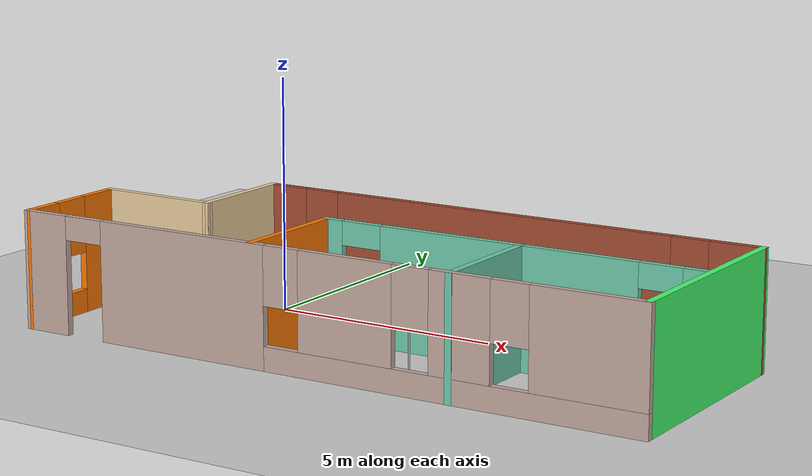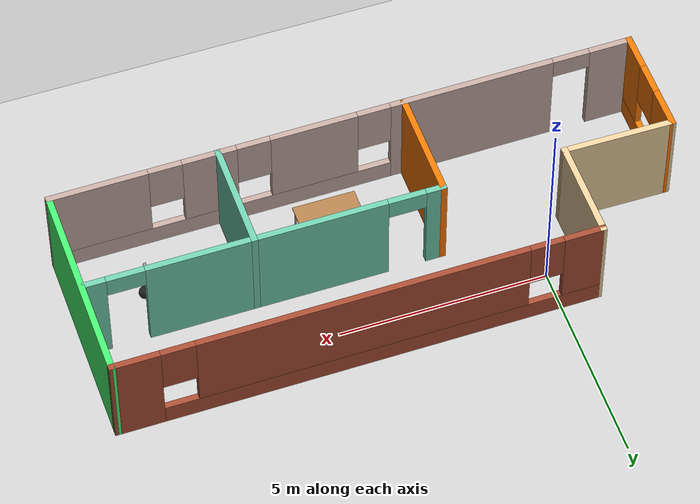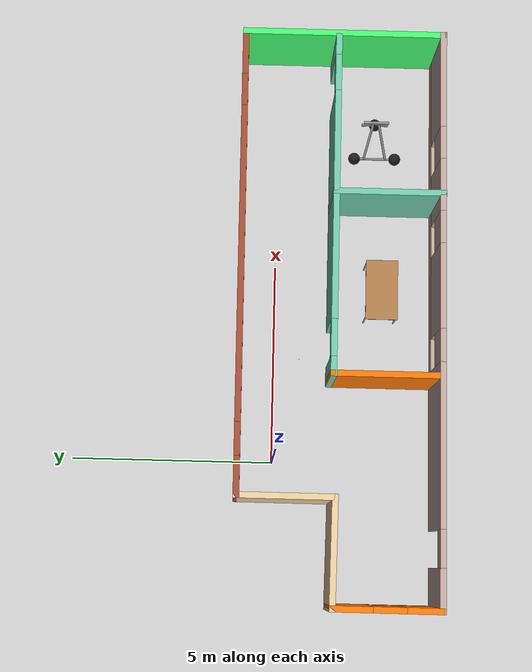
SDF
<sdf version="1.6">
 <world name="default">
  <light name="sun" type="directional">
   <pose>0 0 10 0 -0 0</pose>
   <diffuse>0.8 0.8 0.8 1</diffuse>
   <specular>0.2 0.2 0.2 1</specular>
   <attenuation>
    <range>1000</range>
    <constant>0.9</constant>
    <linear>0.01</linear>
    <quadratic>0.001</quadratic>
   </attenuation>
   <direction>-0.5 0.1 -0.9</direction>
  </light>
  <model name="ground_plane">
   <static>1</static>
   <link name="link">
    <collision name="collision">
     <geometry><plane><normal>0 0 1</normal><size>100 100</size></plane></geometry>
     <surface>
      <contact><collide_bitmask>65535</collide_bitmask></contact>
      <friction><ode><mu>100</mu><mu2>50</mu2></ode></friction>
     </surface>
    </collision>
    <visual name="visual">
     <cast_shadows>0</cast_shadows>
     <geometry><plane><normal>0 0 1</normal><size>100 100</size></plane></geometry>
     <material>
      <script><uri>file://media/materials/scripts/gazebo.material</uri><name>Gazebo/Grey</name></script>
     </material>
    </visual>
   </link>
  </model>
  <gravity>0 0 -9.8</gravity>
  <magnetic_field>6e-06 2.3e-05 -4.2e-05</magnetic_field>
  <atmosphere type="adiabatic"/>
  <physics name="default_physics" default="0" type="ode">
   <max_step_size>0.001</max_step_size>
   <real_time_factor>1</real_time_factor>
   <real_time_update_rate>1000</real_time_update_rate>
  </physics>
  <scene><ambient>0.4 0.4 0.4 1</ambient><background>0.7 0.7 0.7 1</background><shadows>1</shadows></scene>
  <spherical_coordinates>
   <surface_model>EARTH_WGS84</surface_model>
   <latitude_deg>0</latitude_deg>
   <longitude_deg>0</longitude_deg>
   <elevation>0</elevation>
   <heading_deg>0</heading_deg>
  </spherical_coordinates>
  <model name="New">
   <pose>3.48669 -1.57847 0 0 -0 0</pose>
   <link name="Wall_0">
    <pose>-6.99669 -1.17687 0 0 0 -1.5708</pose>
    <visual name="Wall_0_Visual_0">
     <pose>-0.859523 0 1.25 0 -0 0</pose>
     <geometry><box><size>1.03095 0.15 2.5</size></box></geometry>
     <material>
      <script><uri>file://media/materials/scripts/gazebo.material</uri><name>Gazebo/Grey</name></script>
      <ambient>0.996078 0.47451 0.0196078 1</ambient>
     </material>
     <meta><layer>0</layer></meta>
    </visual>
    <collision name="Wall_0_Collision_0">
     <geometry><box><size>1.03095 0.15 2.5</size></box></geometry>
     <pose>-0.859523 0 1.25 0 -0 0</pose>
    </collision>
    <visual name="Wall_0_Visual_1">
     <pose>0.515477 0 0.25 0 -0 0</pose>
     <geometry><box><size>1.71905 0.15 0.5</size></box></geometry>
     <material>
      <script><uri>file://media/materials/scripts/gazebo.material</uri><name>Gazebo/Grey</name></script>
      <ambient>0.996078 0.47451 0.0196078 1</ambient>
     </material>
     <meta><layer>0</layer></meta>
    </visual>
    <collision name="Wall_0_Collision_1">
     <geometry><box><size>1.71905 0.15 0.5</size></box></geometry>
     <pose>0.515477 0 0.25 0 -0 0</pose>
    </collision>
    <visual name="Wall_0_Visual_2">
     <pose>0.915477 0 1.5 0 -0 0</pose>
     <geometry><box><size>0.919047 0.15 2</size></box></geometry>
     <material>
      <script><uri>file://media/materials/scripts/gazebo.material</uri><name>Gazebo/Grey</name></script>
      <ambient>0.996078 0.47451 0.0196078 1</ambient>
     </material>
     <meta><layer>0</layer></meta>
    </visual>
    <collision name="Wall_0_Collision_2">
     <geometry><box><size>0.919047 0.15 2</size></box></geometry>
     <pose>0.915477 0 1.5 0 -0 0</pose>
    </collision>
    <visual name="Wall_0_Visual_3">
     <pose>0.055953 0 1.9 0 -0 0</pose>
     <geometry><box><size>0.8 0.15 1.2</size></box></geometry>
     <material>
      <script><uri>file://media/materials/scripts/gazebo.material</uri><name>Gazebo/Grey</name></script>
      <ambient>0.996078 0.47451 0.0196078 1</ambient>
     </material>
     <meta><layer>0</layer></meta>
    </visual>
    <collision name="Wall_0_Collision_3">
     <geometry><box><size>0.8 0.15 1.2</size></box></geometry>
     <pose>0.055953 0 1.9 0 -0 0</pose>
    </collision>
   </link>
   <link name="Wall_1">
    <pose>4e-06 -2.4337 0 0 -0 0.00617</pose>
    <visual name="Wall_1_Visual_0">
     <pose>-6.52931 0 1.25 0 -0 0</pose>
     <geometry><box><size>1.08587 0.15 2.5</size></box></geometry>
     <material>
      <script><uri>file://media/materials/scripts/gazebo.material</uri><name>Gazebo/Grey</name></script>
      <ambient>0.760784 0.662745 0.627451 1</ambient>
     </material>
     <meta><layer>0</layer></meta>
    </visual>
    <collision name="Wall_1_Collision_0">
     <geometry><box><size>1.08587 0.15 2.5</size></box></geometry>
     <pose>-6.52931 0 1.25 0 -0 0</pose>
    </collision>
    <visual name="Wall_1_Visual_1">
     <pose>-3.09631 0 1.25 0 -0 0</pose>
     <geometry><box><size>3.98014 0.15 2.5</size></box></geometry>
     <material>
      <script><uri>file://media/materials/scripts/gazebo.material</uri><name>Gazebo/Grey</name></script>
      <ambient>0.760784 0.662745 0.627451 1</ambient>
     </material>
     <meta><layer>0</layer></meta>
    </visual>
    <collision name="Wall_1_Collision_1">
     <geometry><box><size>3.98014 0.15 2.5</size></box></geometry>
     <pose>-3.09631 0 1.25 0 -0 0</pose>
    </collision>
    <visual name="Wall_1_Visual_2">
     <pose>2.983 0 0.25 0 -0 0</pose>
     <geometry><box><size>8.17848 0.15 0.5</size></box></geometry>
     <material>
      <script><uri>file://media/materials/scripts/gazebo.material</uri><name>Gazebo/Grey</name></script>
      <ambient>0.760784 0.662745 0.627451 1</ambient>
     </material>
     <meta><layer>0</layer></meta>
    </visual>
    <collision name="Wall_1_Collision_2">
     <geometry><box><size>8.17848 0.15 0.5</size></box></geometry>
     <pose>2.983 0 0.25 0 -0 0</pose>
    </collision>
    <visual name="Wall_1_Visual_3">
     <pose>0.739938 0 1.5 0 -0 0</pose>
     <geometry><box><size>2.09235 0.15 2</size></box></geometry>
     <material>
      <script><uri>file://media/materials/scripts/gazebo.material</uri><name>Gazebo/Grey</name></script>
      <ambient>0.760784 0.662745 0.627451 1</ambient>
     </material>
     <meta><layer>0</layer></meta>
    </visual>
    <collision name="Wall_1_Collision_3">
     <geometry><box><size>2.09235 0.15 2</size></box></geometry>
     <pose>0.739938 0 1.5 0 -0 0</pose>
    </collision>
    <visual name="Wall_1_Visual_4">
     <pose>3.23501 0 1.5 0 -0 0</pose>
     <geometry><box><size>1.29778 0.15 2</size></box></geometry>
     <material>
      <script><uri>file://media/materials/scripts/gazebo.material</uri><name>Gazebo/Grey</name></script>
      <ambient>0.760784 0.662745 0.627451 1</ambient>
     </material>
     <meta><layer>0</layer></meta>
    </visual>
    <collision name="Wall_1_Collision_4">
     <geometry><box><size>1.29778 0.15 2</size></box></geometry>
     <pose>3.23501 0 1.5 0 -0 0</pose>
    </collision>
    <visual name="Wall_1_Visual_5">
     <pose>5.87807 0 1.5 0 -0 0</pose>
     <geometry><box><size>2.38834 0.15 2</size></box></geometry>
     <material>
      <script><uri>file://media/materials/scripts/gazebo.material</uri><name>Gazebo/Grey</name></script>
      <ambient>0.760784 0.662745 0.627451 1</ambient>
     </material>
     <meta><layer>0</layer></meta>
    </visual>
    <collision name="Wall_1_Collision_5">
     <geometry><box><size>2.38834 0.15 2</size></box></geometry>
     <pose>5.87807 0 1.5 0 -0 0</pose>
    </collision>
    <visual name="Wall_1_Visual_6">
     <pose>-0.70624 0 1.9 0 -0 0</pose>
     <geometry><box><size>0.8 0.15 1.2</size></box></geometry>
     <material>
      <script><uri>file://media/materials/scripts/gazebo.material</uri><name>Gazebo/Grey</name></script>
      <ambient>0.760784 0.662745 0.627451 1</ambient>
     </material>
     <meta><layer>0</layer></meta>
    </visual>
    <collision name="Wall_1_Collision_6">
     <geometry><box><size>0.8 0.15 1.2</size></box></geometry>
     <pose>-0.70624 0 1.9 0 -0 0</pose>
    </collision>
    <visual name="Wall_1_Visual_7">
     <pose>2.18612 0 1.9 0 -0 0</pose>
     <geometry><box><size>0.8 0.15 1.2</size></box></geometry>
     <material>
      <script><uri>file://media/materials/scripts/gazebo.material</uri><name>Gazebo/Grey</name></script>
      <ambient>0.760784 0.662745 0.627451 1</ambient>
     </material>
     <meta><layer>0</layer></meta>
    </visual>
    <collision name="Wall_1_Collision_7">
     <geometry><box><size>0.8 0.15 1.2</size></box></geometry>
     <pose>2.18612 0 1.9 0 -0 0</pose>
    </collision>
    <visual name="Wall_1_Visual_8">
     <pose>4.2839 0 1.9 0 -0 0</pose>
     <geometry><box><size>0.8 0.15 1.2</size></box></geometry>
     <material>
      <script><uri>file://media/materials/scripts/gazebo.material</uri><name>Gazebo/Grey</name></script>
      <ambient>0.760784 0.662745 0.627451 1</ambient>
     </material>
     <meta><layer>0</layer></meta>
    </visual>
    <collision name="Wall_1_Collision_8">
     <geometry><box><size>0.8 0.15 1.2</size></box></geometry>
     <pose>4.2839 0 1.9 0 -0 0</pose>
    </collision>
    <visual name="Wall_1_Visual_9">
     <pose>-5.53637 0 2.25 0 -0 0</pose>
     <geometry><box><size>0.9 0.15 0.5</size></box></geometry>
     <material>
      <script><uri>file://media/materials/scripts/gazebo.material</uri><name>Gazebo/Grey</name></script>
      <ambient>0.760784 0.662745 0.627451 1</ambient>
     </material>
     <meta><layer>0</layer></meta>
    </visual>
    <collision name="Wall_1_Collision_9">
     <geometry><box><size>0.9 0.15 0.5</size></box></geometry>
     <pose>-5.53637 0 2.25 0 -0 0</pose>
    </collision>
   </link>
   <link name="Wall_11">
    <collision name="Wall_11_Collision">
     <geometry><box><size>2.75 0.15 2.5</size></box></geometry>
     <pose>0 0 1.25 0 -0 0</pose>
    </collision>
    <visual name="Wall_11_Visual">
     <pose>0 0 1.25 0 -0 0</pose>
     <geometry><box><size>2.75 0.15 2.5</size></box></geometry>
     <material>
      <script><uri>file://media/materials/scripts/gazebo.material</uri><name>Gazebo/Grey</name></script>
      <ambient>0.435294 0.796078 0.67451 1</ambient>
     </material>
     <meta><layer>0</layer></meta>
    </visual>
    <pose>3.01459 -1.12215 0 0 0 -1.5708</pose>
   </link>
   <link name="Wall_2">
    <collision name="Wall_2_Collision">
     <geometry><box><size>5 0.15 2.5</size></box></geometry>
     <pose>0 0 1.25 0 -0 0</pose>
    </collision>
    <visual name="Wall_2_Visual">
     <pose>0 0 1.25 0 -0 0</pose>
     <geometry><box><size>5 0.15 2.5</size></box></geometry>
     <material>
      <script><uri>file://media/materials/scripts/gazebo.material</uri><name>Gazebo/Grey</name></script>
      <ambient>0.270588 1 0.439216 1</ambient>
     </material>
     <meta><layer>0</layer></meta>
    </visual>
    <pose>6.9967 0.052103 0 0 -0 1.5708</pose>
   </link>
   <link name="Wall_3">
    <pose>1.3 2.45979 0 0 0 -3.13855</pose>
    <visual name="Wall_3_Visual_0">
     <pose>-5.18658 0 1.25 0 -0 0</pose>
     <geometry><box><size>1.17029 0.15 2.5</size></box></geometry>
     <material>
      <script><uri>file://media/materials/scripts/gazebo.material</uri><name>Gazebo/Bricks</name></script>
      <ambient>1 1 1 1</ambient>
     </material>
     <meta><layer>0</layer></meta>
    </visual>
    <collision name="Wall_3_Collision_0">
     <geometry><box><size>1.17029 0.15 2.5</size></box></geometry>
     <pose>-5.18658 0 1.25 0 -0 0</pose>
    </collision>
    <visual name="Wall_3_Visual_1">
     <pose>0.585144 0 0.25 0 -0 0</pose>
     <geometry><box><size>10.3732 0.15 0.5</size></box></geometry>
     <material>
      <script><uri>file://media/materials/scripts/gazebo.material</uri><name>Gazebo/Bricks</name></script>
      <ambient>1 1 1 1</ambient>
     </material>
     <meta><layer>0</layer></meta>
    </visual>
    <collision name="Wall_3_Collision_1">
     <geometry><box><size>10.3732 0.15 0.5</size></box></geometry>
     <pose>0.585144 0 0.25 0 -0 0</pose>
    </collision>
    <visual name="Wall_3_Visual_2">
     <pose>0.083821 0 1.5 0 -0 0</pose>
     <geometry><box><size>7.77051 0.15 2</size></box></geometry>
     <material>
      <script><uri>file://media/materials/scripts/gazebo.material</uri><name>Gazebo/Bricks</name></script>
      <ambient>1 1 1 1</ambient>
     </material>
     <meta><layer>0</layer></meta>
    </visual>
    <collision name="Wall_3_Collision_2">
     <geometry><box><size>7.77051 0.15 2</size></box></geometry>
     <pose>0.083821 0 1.5 0 -0 0</pose>
    </collision>
    <visual name="Wall_3_Visual_3">
     <pose>5.2704 0 1.5 0 -0 0</pose>
     <geometry><box><size>1.00265 0.15 2</size></box></geometry>
     <material>
      <script><uri>file://media/materials/scripts/gazebo.material</uri><name>Gazebo/Bricks</name></script>
      <ambient>1 1 1 1</ambient>
     </material>
     <meta><layer>0</layer></meta>
    </visual>
    <collision name="Wall_3_Collision_3">
     <geometry><box><size>1.00265 0.15 2</size></box></geometry>
     <pose>5.2704 0 1.5 0 -0 0</pose>
    </collision>
    <visual name="Wall_3_Visual_4">
     <pose>-4.20143 0 1.9 0 -0 0</pose>
     <geometry><box><size>0.8 0.15 1.2</size></box></geometry>
     <material>
      <script><uri>file://media/materials/scripts/gazebo.material</uri><name>Gazebo/Bricks</name></script>
      <ambient>1 1 1 1</ambient>
     </material>
     <meta><layer>0</layer></meta>
    </visual>
    <collision name="Wall_3_Collision_4">
     <geometry><box><size>0.8 0.15 1.2</size></box></geometry>
     <pose>-4.20143 0 1.9 0 -0 0</pose>
    </collision>
    <visual name="Wall_3_Visual_5">
     <pose>4.36908 0 1.9 0 -0 0</pose>
     <geometry><box><size>0.8 0.15 1.2</size></box></geometry>
     <material>
      <script><uri>file://media/materials/scripts/gazebo.material</uri><name>Gazebo/Bricks</name></script>
      <ambient>1 1 1 1</ambient>
     </material>
     <meta><layer>0</layer></meta>
    </visual>
    <collision name="Wall_3_Collision_5">
     <geometry><box><size>0.8 0.15 1.2</size></box></geometry>
     <pose>4.36908 0 1.9 0 -0 0</pose>
    </collision>
   </link>
   <link name="Wall_4">
    <collision name="Wall_4_Collision">
     <geometry><box><size>2.5 0.15 2.5</size></box></geometry>
     <pose>0 0 1.25 0 -0 0</pose>
    </collision>
    <visual name="Wall_4_Visual">
     <pose>0 0 1.25 0 -0 0</pose>
     <geometry><box><size>2.5 0.15 2.5</size></box></geometry>
     <material>
      <script><uri>file://media/materials/scripts/gazebo.material</uri><name>Gazebo/Grey</name></script>
      <ambient>0.921569 0.807843 0.615686 1</ambient>
     </material>
     <meta><layer>0</layer></meta>
    </visual>
    <pose>-4.39669 1.26747 0 0 0 -1.5708</pose>
   </link>
   <link name="Wall_5">
    <collision name="Wall_5_Collision">
     <geometry><box><size>2.75018 0.15 2.5</size></box></geometry>
     <pose>0 0 1.25 0 -0 0</pose>
    </collision>
    <visual name="Wall_5_Visual">
     <pose>0 0 1.25 0 -0 0</pose>
     <geometry><box><size>2.75018 0.15 2.5</size></box></geometry>
     <material>
      <script><uri>file://media/materials/scripts/gazebo.material</uri><name>Gazebo/Grey</name></script>
      <ambient>0.921569 0.807843 0.615686 1</ambient>
     </material>
     <meta><layer>0</layer></meta>
    </visual>
    <pose>-5.69669 0.1078 0 0 -0 3.1298</pose>
   </link>
   <link name="Wall_7">
    <collision name="Wall_7_Collision">
     <geometry><box><size>2.75 0.15 2.5</size></box></geometry>
     <pose>0 0 1.25 0 -0 0</pose>
    </collision>
    <visual name="Wall_7_Visual">
     <pose>0 0 1.25 0 -0 0</pose>
     <geometry><box><size>2.75 0.15 2.5</size></box></geometry>
     <material>
      <script><uri>file://media/materials/scripts/gazebo.material</uri><name>Gazebo/Grey</name></script>
      <ambient>0.996078 0.47451 0.0196078 1</ambient>
     </material>
     <meta><layer>0</layer></meta>
    </visual>
    <pose>-1.44664 -1.12215 0 0 0 -1.5708</pose>
   </link>
   <link name="Wall_9">
    <pose>2.72836 0.177847 0 0 -0 0</pose>
    <visual name="Wall_9_Visual_0">
     <pose>-4.00548 0 1.25 0 -0 0</pose>
     <geometry><box><size>0.489033 0.15 2.5</size></box></geometry>
     <material>
      <script><uri>file://media/materials/scripts/gazebo.material</uri><name>Gazebo/Grey</name></script>
      <ambient>0.435294 0.796078 0.67451 1</ambient>
     </material>
     <meta><layer>0</layer></meta>
    </visual>
    <collision name="Wall_9_Collision_0">
     <geometry><box><size>0.489033 0.15 2.5</size></box></geometry>
     <pose>-4.00548 0 1.25 0 -0 0</pose>
    </collision>
    <visual name="Wall_9_Visual_1">
     <pose>-0.02235 0 1.25 0 -0 0</pose>
     <geometry><box><size>5.67723 0.15 2.5</size></box></geometry>
     <material>
      <script><uri>file://media/materials/scripts/gazebo.material</uri><name>Gazebo/Grey</name></script>
      <ambient>0.435294 0.796078 0.67451 1</ambient>
     </material>
     <meta><layer>0</layer></meta>
    </visual>
    <collision name="Wall_9_Collision_1">
     <geometry><box><size>5.67723 0.15 2.5</size></box></geometry>
     <pose>-0.02235 0 1.25 0 -0 0</pose>
    </collision>
    <visual name="Wall_9_Visual_2">
     <pose>3.98313 0 1.25 0 -0 0</pose>
     <geometry><box><size>0.533733 0.15 2.5</size></box></geometry>
     <material>
      <script><uri>file://media/materials/scripts/gazebo.material</uri><name>Gazebo/Grey</name></script>
      <ambient>0.435294 0.796078 0.67451 1</ambient>
     </material>
     <meta><layer>0</layer></meta>
    </visual>
    <collision name="Wall_9_Collision_2">
     <geometry><box><size>0.533733 0.15 2.5</size></box></geometry>
     <pose>3.98313 0 1.25 0 -0 0</pose>
    </collision>
    <visual name="Wall_9_Visual_3">
     <pose>-3.31097 0 2.25 0 -0 0</pose>
     <geometry><box><size>0.9 0.15 0.5</size></box></geometry>
     <material>
      <script><uri>file://media/materials/scripts/gazebo.material</uri><name>Gazebo/Grey</name></script>
      <ambient>0.435294 0.796078 0.67451 1</ambient>
     </material>
     <meta><layer>0</layer></meta>
    </visual>
    <collision name="Wall_9_Collision_3">
     <geometry><box><size>0.9 0.15 0.5</size></box></geometry>
     <pose>-3.31097 0 2.25 0 -0 0</pose>
    </collision>
    <visual name="Wall_9_Visual_4">
     <pose>3.26627 0 2.25 0 -0 0</pose>
     <geometry><box><size>0.9 0.15 0.5</size></box></geometry>
     <material>
      <script><uri>file://media/materials/scripts/gazebo.material</uri><name>Gazebo/Grey</name></script>
      <ambient>0.435294 0.796078 0.67451 1</ambient>
     </material>
     <meta><layer>0</layer></meta>
    </visual>
    <collision name="Wall_9_Collision_4">
     <geometry><box><size>0.9 0.15 0.5</size></box></geometry>
     <pose>3.26627 0 2.25 0 -0 0</pose>
    </collision>
   </link>
   <static>1</static>
  </model>
  <model name="marble_1_5cm">
   <link name="link">
    <pose>0 0 0.0075 0 -0 0</pose>
    <inertial>
     <mass>0.0062</mass>
     <inertia>
      <ixx>1.395e-07</ixx>
      <ixy>0</ixy>
      <ixz>0</ixz>
      <iyy>1.395e-07</iyy>
      <iyz>0</iyz>
      <izz>1.395e-07</izz>
     </inertia>
    </inertial>
    <collision name="collision">
     <geometry><sphere><radius>0.0075</radius></sphere></geometry>
     <surface>
      <contact>
       <poissons_ratio>0.22</poissons_ratio>
       <elastic_modulus>5.1e+10</elastic_modulus>
       <ode><kp>100000</kp><kd>100</kd><max_vel>100</max_vel><min_depth>0.001</min_depth></ode>
      </contact>
      <friction>
       <torsional>
        <coefficient>1</coefficient>
        <use_patch_radius>0</use_patch_radius>
        <surface_radius>0.01</surface_radius>
       </torsional>
      </friction>
     </surface>
    </collision>
    <visual name="visual">
     <geometry><sphere><radius>0.0075</radius></sphere></geometry>
     <material>
      <script><uri>file://media/materials/scripts/gazebo.material</uri><name>Gazebo/Blue</name></script>
     </material>
    </visual>
    <velocity_decay><linear>0</linear><angular>0.005</angular></velocity_decay>
   </link>
   <pose>2.66126 -0.647032 -0.001001 0 -0 0</pose>
  </model>
  <model name="table">
   <static>1</static>
   <link name="link">
    <collision name="surface">
     <pose>0 0 1 0 -0 0</pose>
     <geometry><box><size>1.5 0.8 0.03</size></box></geometry>
     <surface><friction><ode><mu>0.6</mu><mu2>0.6</mu2></ode></friction></surface>
    </collision>
    <visual name="visual1">
     <pose>0 0 1 0 -0 0</pose>
     <geometry><box><size>1.5 0.8 0.03</size></box></geometry>
     <material>
      <script><uri>file://media/materials/scripts/gazebo.material</uri><name>Gazebo/Wood</name></script>
     </material>
    </visual>
    <collision name="front_left_leg">
     <pose>0.68 0.38 0.5 0 -0 0</pose>
     <geometry><cylinder><radius>0.02</radius><length>1</length></cylinder></geometry>
    </collision>
    <visual name="front_left_leg">
     <pose>0.68 0.38 0.5 0 -0 0</pose>
     <geometry><cylinder><radius>0.02</radius><length>1</length></cylinder></geometry>
     <material>
      <script><uri>file://media/materials/scripts/gazebo.material</uri><name>Gazebo/Grey</name></script>
     </material>
    </visual>
    <collision name="front_right_leg">
     <pose>0.68 -0.38 0.5 0 -0 0</pose>
     <geometry><cylinder><radius>0.02</radius><length>1</length></cylinder></geometry>
    </collision>
    <visual name="front_right_leg">
     <pose>0.68 -0.38 0.5 0 -0 0</pose>
     <geometry><cylinder><radius>0.02</radius><length>1</length></cylinder></geometry>
     <material>
      <script><uri>file://media/materials/scripts/gazebo.material</uri><name>Gazebo/Grey</name></script>
     </material>
    </visual>
    <collision name="back_right_leg">
     <pose>-0.68 -0.38 0.5 0 -0 0</pose>
     <geometry><cylinder><radius>0.02</radius><length>1</length></cylinder></geometry>
    </collision>
    <visual name="back_right_leg">
     <pose>-0.68 -0.38 0.5 0 -0 0</pose>
     <geometry><cylinder><radius>0.02</radius><length>1</length></cylinder></geometry>
     <material>
      <script><uri>file://media/materials/scripts/gazebo.material</uri><name>Gazebo/Grey</name></script>
     </material>
    </visual>
    <collision name="back_left_leg">
     <pose>-0.68 0.38 0.5 0 -0 0</pose>
     <geometry><cylinder><radius>0.02</radius><length>1</length></cylinder></geometry>
    </collision>
    <visual name="back_left_leg">
     <pose>-0.68 0.38 0.5 0 -0 0</pose>
     <geometry><cylinder><radius>0.02</radius><length>1</length></cylinder></geometry>
     <material>
      <script><uri>file://media/materials/scripts/gazebo.material</uri><name>Gazebo/Grey</name></script>
     </material>
    </visual>
   </link>
   <pose>4.33529 -2.64397 0 0 -0 0</pose>
  </model>
  <model name="trisphere_cycle">
   <link name="frame">
    <pose>-0.408559 0 0.385023 0 -0.522021 0</pose>
    <inertial>
     <mass>10</mass>
     <inertia><ixx>0.228</ixx><iyy>0.743521</iyy><izz>0.965521</izz><ixy>0</ixy><ixz>0</ixz><iyz>0</iyz></inertia>
    </inertial>
    <collision name="axle_collision">
     <pose>-0.471335 0 0 1.5708 -0 0</pose>
     <geometry><cylinder><length>1.03923</length><radius>0.03</radius></cylinder></geometry>
    </collision>
    <visual name="axle_visual">
     <pose>-0.471335 0 0 1.5708 -0 0</pose>
     <geometry><cylinder><length>1.03923</length><radius>0.03</radius></cylinder></geometry>
     <material>
      <script><uri>file://media/materials/scripts/gazebo.material</uri><name>Gazebo/Grey</name></script>
     </material>
    </visual>
    <collision name="frame_left_collision">
     <pose>0 0.171552 0 2.986 1.57079 2.76675</pose>
     <geometry><cylinder><length>1.00317</length><radius>0.03</radius></cylinder></geometry>
    </collision>
    <visual name="frame_left_visual">
     <pose>0 0.171552 0 2.986 1.57079 2.76675</pose>
     <geometry><cylinder><length>1.00317</length><radius>0.03</radius></cylinder></geometry>
     <material>
      <script><uri>file://media/materials/scripts/gazebo.material</uri><name>Gazebo/Grey</name></script>
     </material>
    </visual>
    <collision name="frame_right_collision">
     <pose>0 -0.171552 0 -2.986 1.57079 -2.76675</pose>
     <geometry><cylinder><length>1.00317</length><radius>0.03</radius></cylinder></geometry>
    </collision>
    <visual name="frame_right_visual">
     <pose>0 -0.171552 0 -2.986 1.57079 -2.76675</pose>
     <geometry><cylinder><length>1.00317</length><radius>0.03</radius></cylinder></geometry>
     <material>
      <script><uri>file://media/materials/scripts/gazebo.material</uri><name>Gazebo/Grey</name></script>
     </material>
    </visual>
   </link>
   <link name="fork">
    <pose>0.041441 0 0.385023 0 -0.174533 0</pose>
    <inertial>
     <mass>3</mass>
     <inertia>
      <ixx>0.158203</ixx>
      <iyy>0.0583594</iyy>
      <izz>0.102656</izz>
      <ixy>0</ixy>
      <ixz>0</ixz>
      <iyz>0</iyz>
     </inertia>
    </inertial>
    <collision name="handlebars_collision">
     <pose>0 0 0.397748 1.5708 -0 0</pose>
     <geometry><cylinder><length>0.636396</length><radius>0.0375</radius></cylinder></geometry>
    </collision>
    <visual name="handlebars_visual">
     <pose>0 0 0.397748 1.5708 -0 0</pose>
     <geometry><cylinder><length>0.636396</length><radius>0.0375</radius></cylinder></geometry>
     <material>
      <script><uri>file://media/materials/scripts/gazebo.material</uri><name>Gazebo/Grey</name></script>
     </material>
    </visual>
    <collision name="headtube_collision">
     <pose>0 0 0.238649 0 -0 0</pose>
     <geometry><cylinder><length>0.318198</length><radius>0.0375</radius></cylinder></geometry>
    </collision>
    <visual name="headtube_visual">
     <pose>0 0 0.238649 0 -0 0</pose>
     <geometry><cylinder><length>0.318198</length><radius>0.0375</radius></cylinder></geometry>
     <material>
      <script><uri>file://media/materials/scripts/gazebo.material</uri><name>Gazebo/Grey</name></script>
     </material>
    </visual>
    <collision name="spindle_collision">
     <pose>0 0 -0.238649 1.5708 -0 0</pose>
     <geometry><cylinder><length>0.636396</length><radius>0.015</radius></cylinder></geometry>
    </collision>
    <visual name="spindle_visual">
     <pose>0 0 -0.238649 1.5708 -0 0</pose>
     <geometry><cylinder><length>0.636396</length><radius>0.015</radius></cylinder></geometry>
     <material>
      <script><uri>file://media/materials/scripts/gazebo.material</uri><name>Gazebo/Grey</name></script>
     </material>
    </visual>
    <collision name="fork_left_collision">
     <pose>0 0.159099 -0.07955 0.785398 -0 0</pose>
     <geometry><cylinder><length>0.45</length><radius>0.0375</radius></cylinder></geometry>
    </collision>
    <visual name="fork_left_visual">
     <pose>0 0.159099 -0.07955 0.785398 -0 0</pose>
     <geometry><cylinder><length>0.45</length><radius>0.0375</radius></cylinder></geometry>
     <material>
      <script><uri>file://media/materials/scripts/gazebo.material</uri><name>Gazebo/Grey</name></script>
     </material>
    </visual>
    <collision name="fork_right_collision">
     <pose>0 -0.159099 -0.07955 -0.785398 0 0</pose>
     <geometry><cylinder><length>0.45</length><radius>0.0375</radius></cylinder></geometry>
    </collision>
    <visual name="fork_right_visual">
     <pose>0 -0.159099 -0.07955 -0.785398 0 0</pose>
     <geometry><cylinder><length>0.45</length><radius>0.0375</radius></cylinder></geometry>
     <material>
      <script><uri>file://media/materials/scripts/gazebo.material</uri><name>Gazebo/Grey</name></script>
     </material>
    </visual>
   </link>
   <link name="wheel_front">
    <pose>0.082882 0 0.15 0 -0 0</pose>
    <inertial>
     <mass>0.5</mass>
     <inertia><ixx>0.0045</ixx><iyy>0.0045</iyy><izz>0.0045</izz><ixy>0</ixy><ixz>0</ixz><iyz>0</iyz></inertia>
    </inertial>
    <collision name="collision">
     <geometry><sphere><radius>0.15</radius></sphere></geometry>
     <surface><contact><ode><kp>1e+08</kp><kd>1</kd><min_depth>0.0005</min_depth></ode></contact></surface>
    </collision>
    <visual name="visual">
     <geometry><sphere><radius>0.15</radius></sphere></geometry>
     <material>
      <script><uri>file://media/materials/scripts/gazebo.material</uri><name>Gazebo/Black</name></script>
     </material>
    </visual>
   </link>
   <joint name="wheel_front_steer" type="revolute">
    <parent>frame</parent>
    <child>fork</child>
    <axis>
     <xyz>0 0 1</xyz>
     <limit><lower>-0.959931</lower><upper>0.959931</upper></limit>
     <use_parent_model_frame>0</use_parent_model_frame>
     <dynamics><spring_reference>0</spring_reference><spring_stiffness>0</spring_stiffness></dynamics>
    </axis>
   </joint>
   <joint name="wheel_front_spin" type="revolute">
    <parent>fork</parent>
    <child>wheel_front</child>
    <axis>
     <xyz>0 1 0</xyz>
     <use_parent_model_frame>0</use_parent_model_frame>
     <limit><lower>-1e+16</lower><upper>1e+16</upper></limit>
     <dynamics><spring_reference>0</spring_reference><spring_stiffness>0</spring_stiffness></dynamics>
    </axis>
   </joint>
   <link name="wheel_rear_left">
    <pose>-0.817118 0.519615 0.15 0 -0 0</pose>
    <inertial>
     <mass>0.5</mass>
     <inertia><ixx>0.0045</ixx><iyy>0.0045</iyy><izz>0.0045</izz><ixy>0</ixy><ixz>0</ixz><iyz>0</iyz></inertia>
    </inertial>
    <collision name="collision">
     <geometry><sphere><radius>0.15</radius></sphere></geometry>
     <surface><contact><ode><kp>1e+08</kp><kd>1</kd><min_depth>0.0005</min_depth></ode></contact></surface>
    </collision>
    <visual name="visual">
     <geometry><sphere><radius>0.15</radius></sphere></geometry>
     <material>
      <script><uri>file://media/materials/scripts/gazebo.material</uri><name>Gazebo/Black</name></script>
     </material>
    </visual>
   </link>
   <joint name="wheel_rear_left_spin" type="revolute">
    <parent>frame</parent>
    <child>wheel_rear_left</child>
    <axis>
     <xyz>0 1 0</xyz>
     <use_parent_model_frame>0</use_parent_model_frame>
     <limit><lower>-1e+16</lower><upper>1e+16</upper></limit>
     <dynamics><spring_reference>0</spring_reference><spring_stiffness>0</spring_stiffness></dynamics>
    </axis>
   </joint>
   <link name="wheel_rear_right">
    <pose>-0.817118 -0.519615 0.15 0 -0 0</pose>
    <inertial>
     <mass>0.5</mass>
     <inertia><ixx>0.0045</ixx><iyy>0.0045</iyy><izz>0.0045</izz><ixy>0</ixy><ixz>0</ixz><iyz>0</iyz></inertia>
    </inertial>
    <collision name="collision">
     <geometry><sphere><radius>0.15</radius></sphere></geometry>
     <surface><contact><ode><kp>1e+08</kp><kd>1</kd><min_depth>0.0005</min_depth></ode></contact></surface>
    </collision>
    <visual name="visual">
     <geometry><sphere><radius>0.15</radius></sphere></geometry>
     <material>
      <script><uri>file://media/materials/scripts/gazebo.material</uri><name>Gazebo/Black</name></script>
     </material>
    </visual>
   </link>
   <joint name="wheel_rear_right_spin" type="revolute">
    <parent>frame</parent>
    <child>wheel_rear_right</child>
    <axis>
     <xyz>0 1 0</xyz>
     <use_parent_model_frame>0</use_parent_model_frame>
     <limit><lower>-1e+16</lower><upper>1e+16</upper></limit>
     <dynamics><spring_reference>0</spring_reference><spring_stiffness>0</spring_stiffness></dynamics>
    </axis>
   </joint>
   <pose>8.72341 -2.47978 -0.000501 -0 1e-06 -0.000443</pose>
  </model>
 </world>
</sdf>
